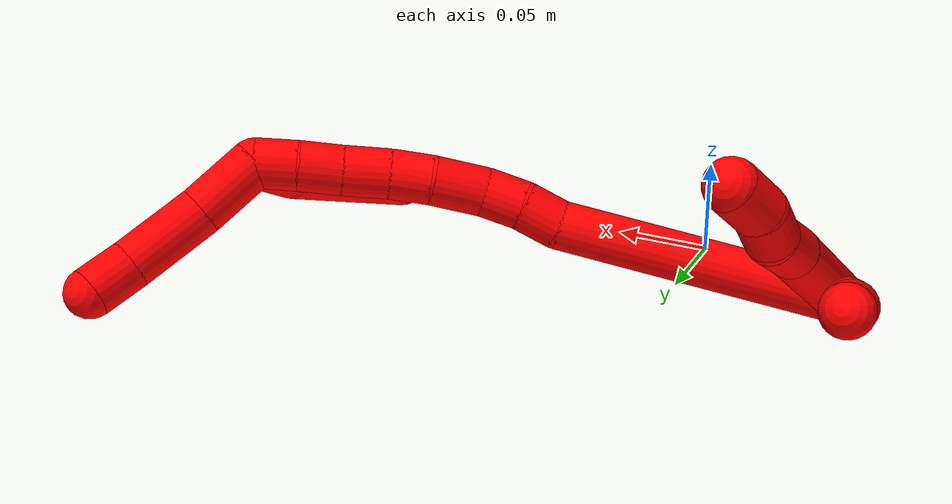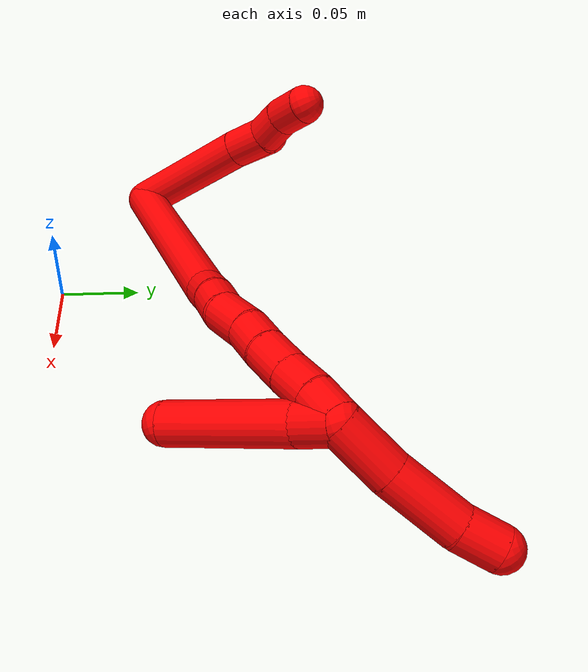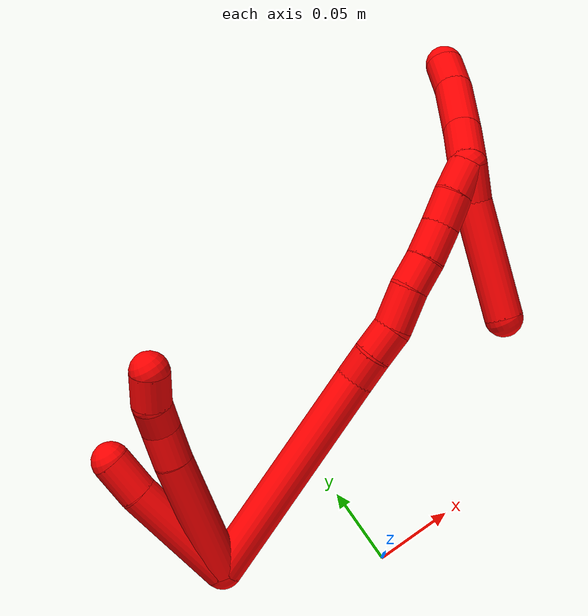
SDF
<sdf version="1.7">
 <world name="default">
  <model name="2">
   <static>0</static>
   <link name="2">
    <collision name="collision-cylinder-e_1_2_8">
     <pose>0.005238 -0.004516 0.041428 0.108588 0.125028 0.006804</pose>
     <geometry><cylinder><radius>0.0125</radius><length>0.084003</length></cylinder></geometry>
     <surface>
      <friction><ode><mu>1.16</mu><mu2>1.16</mu2><slip1>0</slip1><slip2>0</slip2></ode></friction>
      <contact><ode><kp>1e+06</kp><kd>1</kd><max_vel>0</max_vel><min_depth>0.001</min_depth></ode></contact>
     </surface>
    </collision>
    <visual name="visual-cylinder-e_1_2_8">
     <pose>0.005238 -0.004516 0.041428 0.108588 0.125028 0.006804</pose>
     <geometry><cylinder><radius>0.0125</radius><length>0.084003</length></cylinder></geometry>
     <material><ambient>1 0 0 1</ambient></material>
    </visual>
    <collision name="collision-cylinder-e_2_8_9">
     <pose>0.012555 -0.009626 0.094594 0.050542 0.175168 0.004439</pose>
     <geometry><cylinder><radius>0.0125</radius><length>0.023869</length></cylinder></geometry>
     <surface>
      <friction><ode><mu>1.16</mu><mu2>1.16</mu2><slip1>0</slip1><slip2>0</slip2></ode></friction>
      <contact><ode><kp>1e+06</kp><kd>1</kd><max_vel>0</max_vel><min_depth>0.001</min_depth></ode></contact>
     </surface>
    </collision>
    <visual name="visual-cylinder-e_2_8_9">
     <pose>0.012555 -0.009626 0.094594 0.050542 0.175168 0.004439</pose>
     <geometry><cylinder><radius>0.0125</radius><length>0.023869</length></cylinder></geometry>
     <material><ambient>1 0 0 1</ambient></material>
    </visual>
    <collision name="collision-cylinder-e_3_9_10">
     <pose>0.016788 -0.013963 0.115379 0.3922 0.216441 0.043159</pose>
     <geometry><cylinder><radius>0.0125</radius><length>0.02005</length></cylinder></geometry>
     <surface>
      <friction><ode><mu>1.16</mu><mu2>1.16</mu2><slip1>0</slip1><slip2>0</slip2></ode></friction>
      <contact><ode><kp>1e+06</kp><kd>1</kd><max_vel>0</max_vel><min_depth>0.001</min_depth></ode></contact>
     </surface>
    </collision>
    <visual name="visual-cylinder-e_3_9_10">
     <pose>0.016788 -0.013963 0.115379 0.3922 0.216441 0.043159</pose>
     <geometry><cylinder><radius>0.0125</radius><length>0.02005</length></cylinder></geometry>
     <material><ambient>1 0 0 1</ambient></material>
    </visual>
    <collision name="collision-cylinder-e_4_10_6">
     <pose>0.023751 -0.019708 0.134158 0.203012 0.450889 0.046711</pose>
     <geometry><cylinder><radius>0.0125</radius><length>0.022077</length></cylinder></geometry>
     <surface>
      <friction><ode><mu>1.16</mu><mu2>1.16</mu2><slip1>0</slip1><slip2>0</slip2></ode></friction>
      <contact><ode><kp>1e+06</kp><kd>1</kd><max_vel>0</max_vel><min_depth>0.001</min_depth></ode></contact>
     </surface>
    </collision>
    <visual name="visual-cylinder-e_4_10_6">
     <pose>0.023751 -0.019708 0.134158 0.203012 0.450889 0.046711</pose>
     <geometry><cylinder><radius>0.0125</radius><length>0.022077</length></cylinder></geometry>
     <material><ambient>1 0 0 1</ambient></material>
    </visual>
    <collision name="collision-cylinder-e_1_2_11">
     <pose>-0.010438 0.00095 0.035354 -0.026869 -0.286981 0.003882</pose>
     <geometry><cylinder><radius>0.0125</radius><length>0.07375</length></cylinder></geometry>
     <surface>
      <friction><ode><mu>1.16</mu><mu2>1.16</mu2><slip1>0</slip1><slip2>0</slip2></ode></friction>
      <contact><ode><kp>1e+06</kp><kd>1</kd><max_vel>0</max_vel><min_depth>0.001</min_depth></ode></contact>
     </surface>
    </collision>
    <visual name="visual-cylinder-e_1_2_11">
     <pose>-0.010438 0.00095 0.035354 -0.026869 -0.286981 0.003882</pose>
     <geometry><cylinder><radius>0.0125</radius><length>0.07375</length></cylinder></geometry>
     <material><ambient>1 0 0 1</ambient></material>
    </visual>
    <collision name="collision-cylinder-e_2_11_5">
     <pose>-0.023264 0.003177 0.083551 -0.099101 -0.18303 0.009102</pose>
     <geometry><cylinder><radius>0.0125</radius><length>0.02625</length></cylinder></geometry>
     <surface>
      <friction><ode><mu>1.16</mu><mu2>1.16</mu2><slip1>0</slip1><slip2>0</slip2></ode></friction>
      <contact><ode><kp>1e+06</kp><kd>1</kd><max_vel>0</max_vel><min_depth>0.001</min_depth></ode></contact>
     </surface>
    </collision>
    <visual name="visual-cylinder-e_2_11_5">
     <pose>-0.023264 0.003177 0.083551 -0.099101 -0.18303 0.009102</pose>
     <geometry><cylinder><radius>0.0125</radius><length>0.02625</length></cylinder></geometry>
     <material><ambient>1 0 0 1</ambient></material>
    </visual>
    <collision name="collision-cylinder-e_1_2_12">
     <pose>0.064233 0.013067 0.031485 -0.3934 1.08289 -0.238551</pose>
     <geometry><cylinder><radius>0.0125</radius><length>0.145436</length></cylinder></geometry>
     <surface>
      <friction><ode><mu>1.16</mu><mu2>1.16</mu2><slip1>0</slip1><slip2>0</slip2></ode></friction>
      <contact><ode><kp>1e+06</kp><kd>1</kd><max_vel>0</max_vel><min_depth>0.001</min_depth></ode></contact>
     </surface>
    </collision>
    <visual name="visual-cylinder-e_1_2_12">
     <pose>0.064233 0.013067 0.031485 -0.3934 1.08289 -0.238551</pose>
     <geometry><cylinder><radius>0.0125</radius><length>0.145436</length></cylinder></geometry>
     <material><ambient>1 0 0 1</ambient></material>
    </visual>
    <collision name="collision-cylinder-e_2_12_13">
     <pose>0.13727 0.025588 0.067947 0.109337 1.05362 0.063636</pose>
     <geometry><cylinder><radius>0.0125</radius><length>0.020256</length></cylinder></geometry>
     <surface>
      <friction><ode><mu>1.16</mu><mu2>1.16</mu2><slip1>0</slip1><slip2>0</slip2></ode></friction>
      <contact><ode><kp>1e+06</kp><kd>1</kd><max_vel>0</max_vel><min_depth>0.001</min_depth></ode></contact>
     </surface>
    </collision>
    <visual name="visual-cylinder-e_2_12_13">
     <pose>0.13727 0.025588 0.067947 0.109337 1.05362 0.063636</pose>
     <geometry><cylinder><radius>0.0125</radius><length>0.020256</length></cylinder></geometry>
     <material><ambient>1 0 0 1</ambient></material>
    </visual>
    <collision name="collision-cylinder-e_3_13_14">
     <pose>0.155251 0.02604 0.077263 -0.226278 1.11917 -0.142103</pose>
     <geometry><cylinder><radius>0.0125</radius><length>0.020401</length></cylinder></geometry>
     <surface>
      <friction><ode><mu>1.16</mu><mu2>1.16</mu2><slip1>0</slip1><slip2>0</slip2></ode></friction>
      <contact><ode><kp>1e+06</kp><kd>1</kd><max_vel>0</max_vel><min_depth>0.001</min_depth></ode></contact>
     </surface>
    </collision>
    <visual name="visual-cylinder-e_3_13_14">
     <pose>0.155251 0.02604 0.077263 -0.226278 1.11917 -0.142103</pose>
     <geometry><cylinder><radius>0.0125</radius><length>0.020401</length></cylinder></geometry>
     <material><ambient>1 0 0 1</ambient></material>
    </visual>
    <collision name="collision-cylinder-e_4_14_15">
     <pose>0.17472 0.029831 0.089838 -0.326776 0.869123 -0.152741</pose>
     <geometry><cylinder><radius>0.0125</radius><length>0.026948</length></cylinder></geometry>
     <surface>
      <friction><ode><mu>1.16</mu><mu2>1.16</mu2><slip1>0</slip1><slip2>0</slip2></ode></friction>
      <contact><ode><kp>1e+06</kp><kd>1</kd><max_vel>0</max_vel><min_depth>0.001</min_depth></ode></contact>
     </surface>
    </collision>
    <visual name="visual-cylinder-e_4_14_15">
     <pose>0.17472 0.029831 0.089838 -0.326776 0.869123 -0.152741</pose>
     <geometry><cylinder><radius>0.0125</radius><length>0.026948</length></cylinder></geometry>
     <material><ambient>1 0 0 1</ambient></material>
    </visual>
    <collision name="collision-cylinder-e_5_15_16">
     <pose>0.193536 0.035505 0.103041 -0.525912 0.978178 -0.284598</pose>
     <geometry><cylinder><radius>0.0125</radius><length>0.020557</length></cylinder></geometry>
     <surface>
      <friction><ode><mu>1.16</mu><mu2>1.16</mu2><slip1>0</slip1><slip2>0</slip2></ode></friction>
      <contact><ode><kp>1e+06</kp><kd>1</kd><max_vel>0</max_vel><min_depth>0.001</min_depth></ode></contact>
     </surface>
    </collision>
    <visual name="visual-cylinder-e_5_15_16">
     <pose>0.193536 0.035505 0.103041 -0.525912 0.978178 -0.284598</pose>
     <geometry><cylinder><radius>0.0125</radius><length>0.020557</length></cylinder></geometry>
     <material><ambient>1 0 0 1</ambient></material>
    </visual>
    <collision name="collision-cylinder-e_6_16_17">
     <pose>0.211077 0.042516 0.114218 -0.586645 0.879547 -0.282327</pose>
     <geometry><cylinder><radius>0.0125</radius><length>0.023402</length></cylinder></geometry>
     <surface>
      <friction><ode><mu>1.16</mu><mu2>1.16</mu2><slip1>0</slip1><slip2>0</slip2></ode></friction>
      <contact><ode><kp>1e+06</kp><kd>1</kd><max_vel>0</max_vel><min_depth>0.001</min_depth></ode></contact>
     </surface>
    </collision>
    <visual name="visual-cylinder-e_6_16_17">
     <pose>0.211077 0.042516 0.114218 -0.586645 0.879547 -0.282327</pose>
     <geometry><cylinder><radius>0.0125</radius><length>0.023402</length></cylinder></geometry>
     <material><ambient>1 0 0 1</ambient></material>
    </visual>
    <collision name="collision-cylinder-e_7_17_18">
     <pose>0.22834 0.050131 0.126673 -0.509267 0.85659 -0.23656</pose>
     <geometry><cylinder><radius>0.0125</radius><length>0.02183</length></cylinder></geometry>
     <surface>
      <friction><ode><mu>1.16</mu><mu2>1.16</mu2><slip1>0</slip1><slip2>0</slip2></ode></friction>
      <contact><ode><kp>1e+06</kp><kd>1</kd><max_vel>0</max_vel><min_depth>0.001</min_depth></ode></contact>
     </surface>
    </collision>
    <visual name="visual-cylinder-e_7_17_18">
     <pose>0.22834 0.050131 0.126673 -0.509267 0.85659 -0.23656</pose>
     <geometry><cylinder><radius>0.0125</radius><length>0.02183</length></cylinder></geometry>
     <material><ambient>1 0 0 1</ambient></material>
    </visual>
    <collision name="collision-cylinder-e_8_18_1">
     <pose>0.244925 0.057497 0.138155 -0.637364 0.907056 -0.318892</pose>
     <geometry><cylinder><radius>0.0125</radius><length>0.021169</length></cylinder></geometry>
     <surface>
      <friction><ode><mu>1.16</mu><mu2>1.16</mu2><slip1>0</slip1><slip2>0</slip2></ode></friction>
      <contact><ode><kp>1e+06</kp><kd>1</kd><max_vel>0</max_vel><min_depth>0.001</min_depth></ode></contact>
     </surface>
    </collision>
    <visual name="visual-cylinder-e_8_18_1">
     <pose>0.244925 0.057497 0.138155 -0.637364 0.907056 -0.318892</pose>
     <geometry><cylinder><radius>0.0125</radius><length>0.021169</length></cylinder></geometry>
     <material><ambient>1 0 0 1</ambient></material>
    </visual>
    <collision name="collision-cylinder-e_1_1_19">
     <pose>0.257366 0.077221 0.149581 -1.19863 0.236729 -0.16212</pose>
     <geometry><cylinder><radius>0.0125</radius><length>0.034991</length></cylinder></geometry>
     <surface>
      <friction><ode><mu>1.16</mu><mu2>1.16</mu2><slip1>0</slip1><slip2>0</slip2></ode></friction>
      <contact><ode><kp>1e+06</kp><kd>1</kd><max_vel>0</max_vel><min_depth>0.001</min_depth></ode></contact>
     </surface>
    </collision>
    <visual name="visual-cylinder-e_1_1_19">
     <pose>0.257366 0.077221 0.149581 -1.19863 0.236729 -0.16212</pose>
     <geometry><cylinder><radius>0.0125</radius><length>0.034991</length></cylinder></geometry>
     <material><ambient>1 0 0 1</ambient></material>
    </visual>
    <collision name="collision-cylinder-e_2_19_20">
     <pose>0.266232 0.11101 0.165567 -1.07089 0.228864 -0.136159</pose>
     <geometry><cylinder><radius>0.0125</radius><length>0.04199</length></cylinder></geometry>
     <surface>
      <friction><ode><mu>1.16</mu><mu2>1.16</mu2><slip1>0</slip1><slip2>0</slip2></ode></friction>
      <contact><ode><kp>1e+06</kp><kd>1</kd><max_vel>0</max_vel><min_depth>0.001</min_depth></ode></contact>
     </surface>
    </collision>
    <visual name="visual-cylinder-e_2_19_20">
     <pose>0.266232 0.11101 0.165567 -1.07089 0.228864 -0.136159</pose>
     <geometry><cylinder><radius>0.0125</radius><length>0.04199</length></cylinder></geometry>
     <material><ambient>1 0 0 1</ambient></material>
    </visual>
    <collision name="collision-cylinder-e_3_20_4">
     <pose>0.272563 0.137949 0.182377 -0.908804 0.13662 -0.066818</pose>
     <geometry><cylinder><radius>0.0125</radius><length>0.023018</length></cylinder></geometry>
     <surface>
      <friction><ode><mu>1.16</mu><mu2>1.16</mu2><slip1>0</slip1><slip2>0</slip2></ode></friction>
      <contact><ode><kp>1e+06</kp><kd>1</kd><max_vel>0</max_vel><min_depth>0.001</min_depth></ode></contact>
     </surface>
    </collision>
    <visual name="visual-cylinder-e_3_20_4">
     <pose>0.272563 0.137949 0.182377 -0.908804 0.13662 -0.066818</pose>
     <geometry><cylinder><radius>0.0125</radius><length>0.023018</length></cylinder></geometry>
     <material><ambient>1 0 0 1</ambient></material>
    </visual>
    <collision name="collision-cylinder-e_1_1_21">
     <pose>0.249481 0.060437 0.132333 3.05674 -0.328297 -2.63981</pose>
     <geometry><cylinder><radius>0.0125</radius><length>0.023459</length></cylinder></geometry>
     <surface>
      <friction><ode><mu>1.16</mu><mu2>1.16</mu2><slip1>0</slip1><slip2>0</slip2></ode></friction>
      <contact><ode><kp>1e+06</kp><kd>1</kd><max_vel>0</max_vel><min_depth>0.001</min_depth></ode></contact>
     </surface>
    </collision>
    <visual name="visual-cylinder-e_1_1_21">
     <pose>0.249481 0.060437 0.132333 3.05674 -0.328297 -2.63981</pose>
     <geometry><cylinder><radius>0.0125</radius><length>0.023459</length></cylinder></geometry>
     <material><ambient>1 0 0 1</ambient></material>
    </visual>
    <collision name="collision-cylinder-e_2_21_3">
     <pose>0.237717 0.05108 0.084799 2.91482 -0.210114 -1.49397</pose>
     <geometry><cylinder><radius>0.0125</radius><length>0.076541</length></cylinder></geometry>
     <surface>
      <friction><ode><mu>1.16</mu><mu2>1.16</mu2><slip1>0</slip1><slip2>0</slip2></ode></friction>
      <contact><ode><kp>1e+06</kp><kd>1</kd><max_vel>0</max_vel><min_depth>0.001</min_depth></ode></contact>
     </surface>
    </collision>
    <visual name="visual-cylinder-e_2_21_3">
     <pose>0.237717 0.05108 0.084799 2.91482 -0.210114 -1.49397</pose>
     <geometry><cylinder><radius>0.0125</radius><length>0.076541</length></cylinder></geometry>
     <material><ambient>1 0 0 1</ambient></material>
    </visual>
    <collision name="collision-sphere-3">
     <pose>0.229734 0.042665 0.048329 0 -0 0</pose>
     <geometry><sphere><radius>0.0125</radius></sphere></geometry>
     <surface>
      <friction><ode><mu>1.16</mu><mu2>1.16</mu2><slip1>0</slip1><slip2>0</slip2></ode></friction>
      <contact><ode><kp>1e+06</kp><kd>1</kd><max_vel>0</max_vel><min_depth>0.001</min_depth></ode></contact>
     </surface>
    </collision>
    <visual name="visual-sphere-3">
     <pose>0.229734 0.042665 0.048329 0 -0 0</pose>
     <geometry><sphere><radius>0.0125</radius></sphere></geometry>
     <material><ambient>1 0 0 1</ambient></material>
    </visual>
    <collision name="collision-sphere-21">
     <pose>0.245699 0.059496 0.12127 0 -0 0</pose>
     <geometry><sphere><radius>0.0125</radius></sphere></geometry>
     <surface>
      <friction><ode><mu>1.16</mu><mu2>1.16</mu2><slip1>0</slip1><slip2>0</slip2></ode></friction>
      <contact><ode><kp>1e+06</kp><kd>1</kd><max_vel>0</max_vel><min_depth>0.001</min_depth></ode></contact>
     </surface>
    </collision>
    <visual name="visual-sphere-21">
     <pose>0.245699 0.059496 0.12127 0 -0 0</pose>
     <geometry><sphere><radius>0.0125</radius></sphere></geometry>
     <material><ambient>1 0 0 1</ambient></material>
    </visual>
    <collision name="collision-sphere-4">
     <pose>0.27413 0.146942 0.189386 0 -0 0</pose>
     <geometry><sphere><radius>0.0125</radius></sphere></geometry>
     <surface>
      <friction><ode><mu>1.16</mu><mu2>1.16</mu2><slip1>0</slip1><slip2>0</slip2></ode></friction>
      <contact><ode><kp>1e+06</kp><kd>1</kd><max_vel>0</max_vel><min_depth>0.001</min_depth></ode></contact>
     </surface>
    </collision>
    <visual name="visual-sphere-4">
     <pose>0.27413 0.146942 0.189386 0 -0 0</pose>
     <geometry><sphere><radius>0.0125</radius></sphere></geometry>
     <material><ambient>1 0 0 1</ambient></material>
    </visual>
    <collision name="collision-sphere-20">
     <pose>0.270995 0.128955 0.175368 0 -0 0</pose>
     <geometry><sphere><radius>0.0125</radius></sphere></geometry>
     <surface>
      <friction><ode><mu>1.16</mu><mu2>1.16</mu2><slip1>0</slip1><slip2>0</slip2></ode></friction>
      <contact><ode><kp>1e+06</kp><kd>1</kd><max_vel>0</max_vel><min_depth>0.001</min_depth></ode></contact>
     </surface>
    </collision>
    <visual name="visual-sphere-20">
     <pose>0.270995 0.128955 0.175368 0 -0 0</pose>
     <geometry><sphere><radius>0.0125</radius></sphere></geometry>
     <material><ambient>1 0 0 1</ambient></material>
    </visual>
    <collision name="collision-sphere-11">
     <pose>-0.020876 0.0019 0.070708 0 -0 0</pose>
     <geometry><sphere><radius>0.0125</radius></sphere></geometry>
     <surface>
      <friction><ode><mu>1.16</mu><mu2>1.16</mu2><slip1>0</slip1><slip2>0</slip2></ode></friction>
      <contact><ode><kp>1e+06</kp><kd>1</kd><max_vel>0</max_vel><min_depth>0.001</min_depth></ode></contact>
     </surface>
    </collision>
    <visual name="visual-sphere-11">
     <pose>-0.020876 0.0019 0.070708 0 -0 0</pose>
     <geometry><sphere><radius>0.0125</radius></sphere></geometry>
     <material><ambient>1 0 0 1</ambient></material>
    </visual>
    <collision name="collision-sphere-6">
     <pose>0.028561 -0.021711 0.143889 0 -0 0</pose>
     <geometry><sphere><radius>0.0125</radius></sphere></geometry>
     <surface>
      <friction><ode><mu>1.16</mu><mu2>1.16</mu2><slip1>0</slip1><slip2>0</slip2></ode></friction>
      <contact><ode><kp>1e+06</kp><kd>1</kd><max_vel>0</max_vel><min_depth>0.001</min_depth></ode></contact>
     </surface>
    </collision>
    <visual name="visual-sphere-6">
     <pose>0.028561 -0.021711 0.143889 0 -0 0</pose>
     <geometry><sphere><radius>0.0125</radius></sphere></geometry>
     <material><ambient>1 0 0 1</ambient></material>
    </visual>
    <collision name="collision-sphere-10">
     <pose>0.018941 -0.017705 0.124427 0 -0 0</pose>
     <geometry><sphere><radius>0.0125</radius></sphere></geometry>
     <surface>
      <friction><ode><mu>1.16</mu><mu2>1.16</mu2><slip1>0</slip1><slip2>0</slip2></ode></friction>
      <contact><ode><kp>1e+06</kp><kd>1</kd><max_vel>0</max_vel><min_depth>0.001</min_depth></ode></contact>
     </surface>
    </collision>
    <visual name="visual-sphere-10">
     <pose>0.018941 -0.017705 0.124427 0 -0 0</pose>
     <geometry><sphere><radius>0.0125</radius></sphere></geometry>
     <material><ambient>1 0 0 1</ambient></material>
    </visual>
    <collision name="collision-sphere-9">
     <pose>0.014635 -0.01022 0.106331 0 -0 0</pose>
     <geometry><sphere><radius>0.0125</radius></sphere></geometry>
     <surface>
      <friction><ode><mu>1.16</mu><mu2>1.16</mu2><slip1>0</slip1><slip2>0</slip2></ode></friction>
      <contact><ode><kp>1e+06</kp><kd>1</kd><max_vel>0</max_vel><min_depth>0.001</min_depth></ode></contact>
     </surface>
    </collision>
    <visual name="visual-sphere-9">
     <pose>0.014635 -0.01022 0.106331 0 -0 0</pose>
     <geometry><sphere><radius>0.0125</radius></sphere></geometry>
     <material><ambient>1 0 0 1</ambient></material>
    </visual>
    <collision name="collision-sphere-2">
     <geometry><sphere><radius>0.0125</radius></sphere></geometry>
     <surface>
      <friction><ode><mu>1.16</mu><mu2>1.16</mu2><slip1>0</slip1><slip2>0</slip2></ode></friction>
      <contact><ode><kp>1e+06</kp><kd>1</kd><max_vel>0</max_vel><min_depth>0.001</min_depth></ode></contact>
     </surface>
    </collision>
    <visual name="visual-sphere-2">
     <geometry><sphere><radius>0.0125</radius></sphere></geometry>
     <material><ambient>1 0 0 1</ambient></material>
    </visual>
    <collision name="collision-sphere-19">
     <pose>0.261469 0.093064 0.155765 0 -0 0</pose>
     <geometry><sphere><radius>0.0125</radius></sphere></geometry>
     <surface>
      <friction><ode><mu>1.16</mu><mu2>1.16</mu2><slip1>0</slip1><slip2>0</slip2></ode></friction>
      <contact><ode><kp>1e+06</kp><kd>1</kd><max_vel>0</max_vel><min_depth>0.001</min_depth></ode></contact>
     </surface>
    </collision>
    <visual name="visual-sphere-19">
     <pose>0.261469 0.093064 0.155765 0 -0 0</pose>
     <geometry><sphere><radius>0.0125</radius></sphere></geometry>
     <material><ambient>1 0 0 1</ambient></material>
    </visual>
    <collision name="collision-sphere-8">
     <pose>0.010475 -0.009033 0.082857 0 -0 0</pose>
     <geometry><sphere><radius>0.0125</radius></sphere></geometry>
     <surface>
      <friction><ode><mu>1.16</mu><mu2>1.16</mu2><slip1>0</slip1><slip2>0</slip2></ode></friction>
      <contact><ode><kp>1e+06</kp><kd>1</kd><max_vel>0</max_vel><min_depth>0.001</min_depth></ode></contact>
     </surface>
    </collision>
    <visual name="visual-sphere-8">
     <pose>0.010475 -0.009033 0.082857 0 -0 0</pose>
     <geometry><sphere><radius>0.0125</radius></sphere></geometry>
     <material><ambient>1 0 0 1</ambient></material>
    </visual>
    <collision name="collision-sphere-5">
     <pose>-0.025653 0.004454 0.096393 0 -0 0</pose>
     <geometry><sphere><radius>0.0125</radius></sphere></geometry>
     <surface>
      <friction><ode><mu>1.16</mu><mu2>1.16</mu2><slip1>0</slip1><slip2>0</slip2></ode></friction>
      <contact><ode><kp>1e+06</kp><kd>1</kd><max_vel>0</max_vel><min_depth>0.001</min_depth></ode></contact>
     </surface>
    </collision>
    <visual name="visual-sphere-5">
     <pose>-0.025653 0.004454 0.096393 0 -0 0</pose>
     <geometry><sphere><radius>0.0125</radius></sphere></geometry>
     <material><ambient>1 0 0 1</ambient></material>
    </visual>
    <collision name="collision-sphere-12">
     <pose>0.128466 0.026134 0.062969 0 -0 0</pose>
     <geometry><sphere><radius>0.0125</radius></sphere></geometry>
     <surface>
      <friction><ode><mu>1.16</mu><mu2>1.16</mu2><slip1>0</slip1><slip2>0</slip2></ode></friction>
      <contact><ode><kp>1e+06</kp><kd>1</kd><max_vel>0</max_vel><min_depth>0.001</min_depth></ode></contact>
     </surface>
    </collision>
    <visual name="visual-sphere-12">
     <pose>0.128466 0.026134 0.062969 0 -0 0</pose>
     <geometry><sphere><radius>0.0125</radius></sphere></geometry>
     <material><ambient>1 0 0 1</ambient></material>
    </visual>
    <collision name="collision-sphere-13">
     <pose>0.146073 0.025042 0.072925 0 -0 0</pose>
     <geometry><sphere><radius>0.0125</radius></sphere></geometry>
     <surface>
      <friction><ode><mu>1.16</mu><mu2>1.16</mu2><slip1>0</slip1><slip2>0</slip2></ode></friction>
      <contact><ode><kp>1e+06</kp><kd>1</kd><max_vel>0</max_vel><min_depth>0.001</min_depth></ode></contact>
     </surface>
    </collision>
    <visual name="visual-sphere-13">
     <pose>0.146073 0.025042 0.072925 0 -0 0</pose>
     <geometry><sphere><radius>0.0125</radius></sphere></geometry>
     <material><ambient>1 0 0 1</ambient></material>
    </visual>
    <collision name="collision-sphere-14">
     <pose>0.164428 0.027039 0.081601 0 -0 0</pose>
     <geometry><sphere><radius>0.0125</radius></sphere></geometry>
     <surface>
      <friction><ode><mu>1.16</mu><mu2>1.16</mu2><slip1>0</slip1><slip2>0</slip2></ode></friction>
      <contact><ode><kp>1e+06</kp><kd>1</kd><max_vel>0</max_vel><min_depth>0.001</min_depth></ode></contact>
     </surface>
    </collision>
    <visual name="visual-sphere-14">
     <pose>0.164428 0.027039 0.081601 0 -0 0</pose>
     <geometry><sphere><radius>0.0125</radius></sphere></geometry>
     <material><ambient>1 0 0 1</ambient></material>
    </visual>
    <collision name="collision-sphere-15">
     <pose>0.185011 0.032623 0.098075 0 -0 0</pose>
     <geometry><sphere><radius>0.0125</radius></sphere></geometry>
     <surface>
      <friction><ode><mu>1.16</mu><mu2>1.16</mu2><slip1>0</slip1><slip2>0</slip2></ode></friction>
      <contact><ode><kp>1e+06</kp><kd>1</kd><max_vel>0</max_vel><min_depth>0.001</min_depth></ode></contact>
     </surface>
    </collision>
    <visual name="visual-sphere-15">
     <pose>0.185011 0.032623 0.098075 0 -0 0</pose>
     <geometry><sphere><radius>0.0125</radius></sphere></geometry>
     <material><ambient>1 0 0 1</ambient></material>
    </visual>
    <collision name="collision-sphere-16">
     <pose>0.202062 0.038387 0.108006 0 -0 0</pose>
     <geometry><sphere><radius>0.0125</radius></sphere></geometry>
     <surface>
      <friction><ode><mu>1.16</mu><mu2>1.16</mu2><slip1>0</slip1><slip2>0</slip2></ode></friction>
      <contact><ode><kp>1e+06</kp><kd>1</kd><max_vel>0</max_vel><min_depth>0.001</min_depth></ode></contact>
     </surface>
    </collision>
    <visual name="visual-sphere-16">
     <pose>0.202062 0.038387 0.108006 0 -0 0</pose>
     <geometry><sphere><radius>0.0125</radius></sphere></geometry>
     <material><ambient>1 0 0 1</ambient></material>
    </visual>
    <collision name="collision-sphere-17">
     <pose>0.220092 0.046645 0.12043 0 -0 0</pose>
     <geometry><sphere><radius>0.0125</radius></sphere></geometry>
     <surface>
      <friction><ode><mu>1.16</mu><mu2>1.16</mu2><slip1>0</slip1><slip2>0</slip2></ode></friction>
      <contact><ode><kp>1e+06</kp><kd>1</kd><max_vel>0</max_vel><min_depth>0.001</min_depth></ode></contact>
     </surface>
    </collision>
    <visual name="visual-sphere-17">
     <pose>0.220092 0.046645 0.12043 0 -0 0</pose>
     <geometry><sphere><radius>0.0125</radius></sphere></geometry>
     <material><ambient>1 0 0 1</ambient></material>
    </visual>
    <collision name="collision-sphere-18">
     <pose>0.236588 0.053617 0.132915 0 -0 0</pose>
     <geometry><sphere><radius>0.0125</radius></sphere></geometry>
     <surface>
      <friction><ode><mu>1.16</mu><mu2>1.16</mu2><slip1>0</slip1><slip2>0</slip2></ode></friction>
      <contact><ode><kp>1e+06</kp><kd>1</kd><max_vel>0</max_vel><min_depth>0.001</min_depth></ode></contact>
     </surface>
    </collision>
    <visual name="visual-sphere-18">
     <pose>0.236588 0.053617 0.132915 0 -0 0</pose>
     <geometry><sphere><radius>0.0125</radius></sphere></geometry>
     <material><ambient>1 0 0 1</ambient></material>
    </visual>
    <collision name="collision-sphere-1">
     <pose>0.253263 0.061378 0.143396 0 -0 0</pose>
     <geometry><sphere><radius>0.0125</radius></sphere></geometry>
     <surface>
      <friction><ode><mu>1.16</mu><mu2>1.16</mu2><slip1>0</slip1><slip2>0</slip2></ode></friction>
      <contact><ode><kp>1e+06</kp><kd>1</kd><max_vel>0</max_vel><min_depth>0.001</min_depth></ode></contact>
     </surface>
    </collision>
    <visual name="visual-sphere-1">
     <pose>0.253263 0.061378 0.143396 0 -0 0</pose>
     <geometry><sphere><radius>0.0125</radius></sphere></geometry>
     <material><ambient>1 0 0 1</ambient></material>
    </visual>
    <inertial>
     <pose>0.11975 0.029981 0.082969 0 -0 0</pose>
     <mass>0.75</mass>
     <inertia>
      <ixx>0.000184</ixx>
      <ixy>0</ixy>
      <ixz>0</ixz>
      <iyy>0.000309</iyy>
      <iyz>0</iyz>
      <izz>-0.000255</izz>
     </inertia>
    </inertial>
   </link>
   <pose>-0.087153 0.051692 0.011684 -1.03772 -0.181042 -0.166324</pose>
  </model>
 </world>
</sdf>
